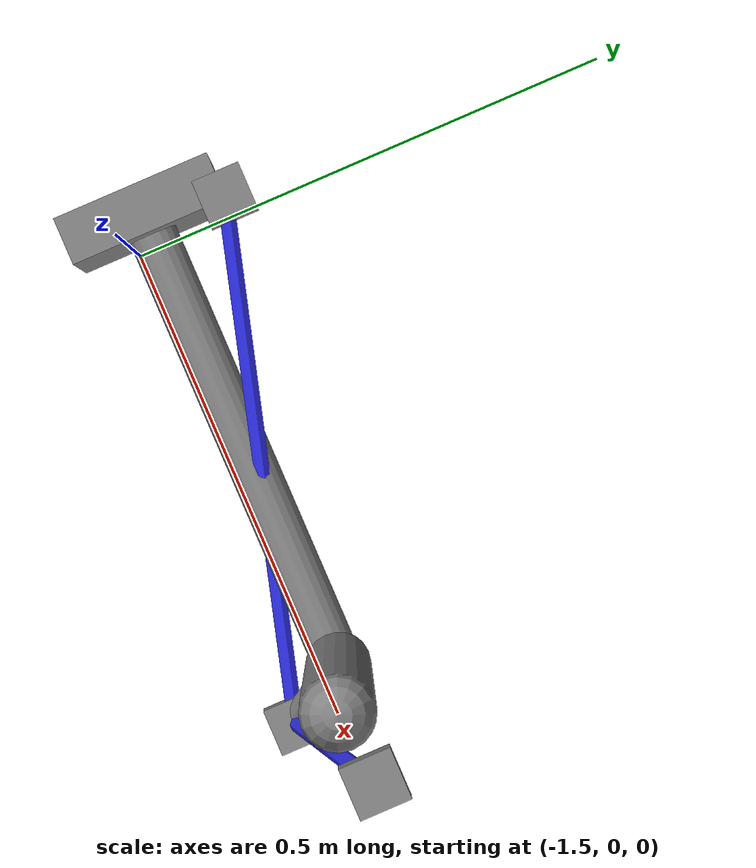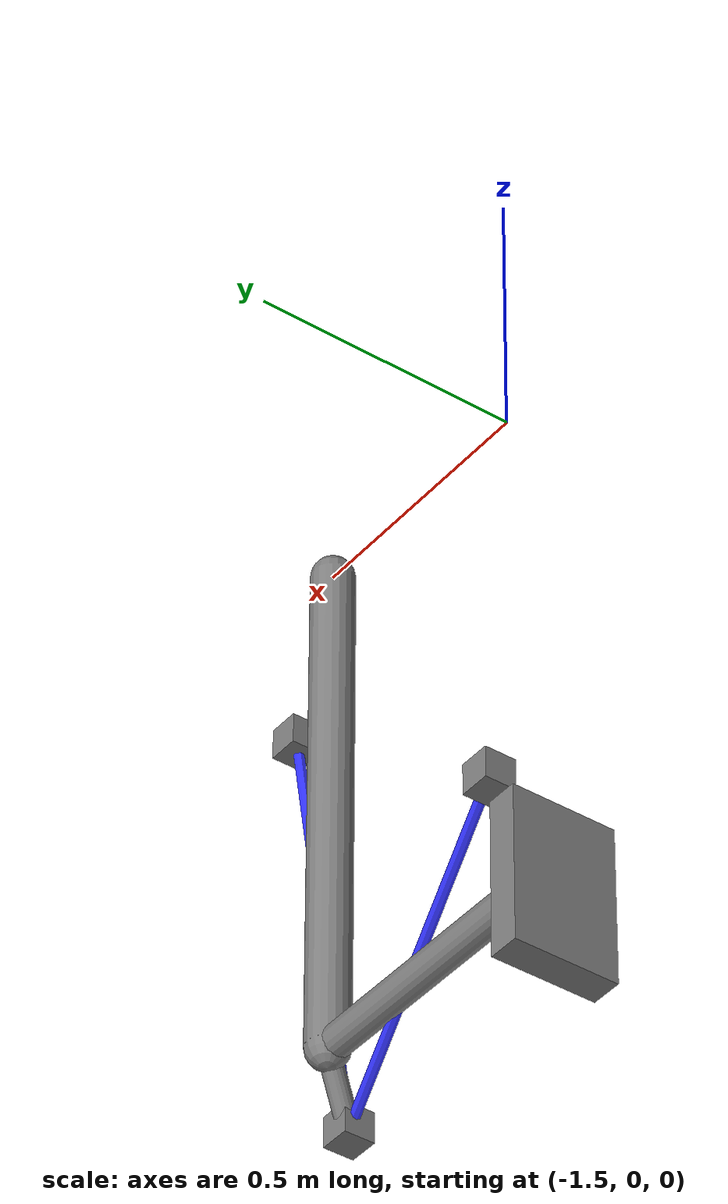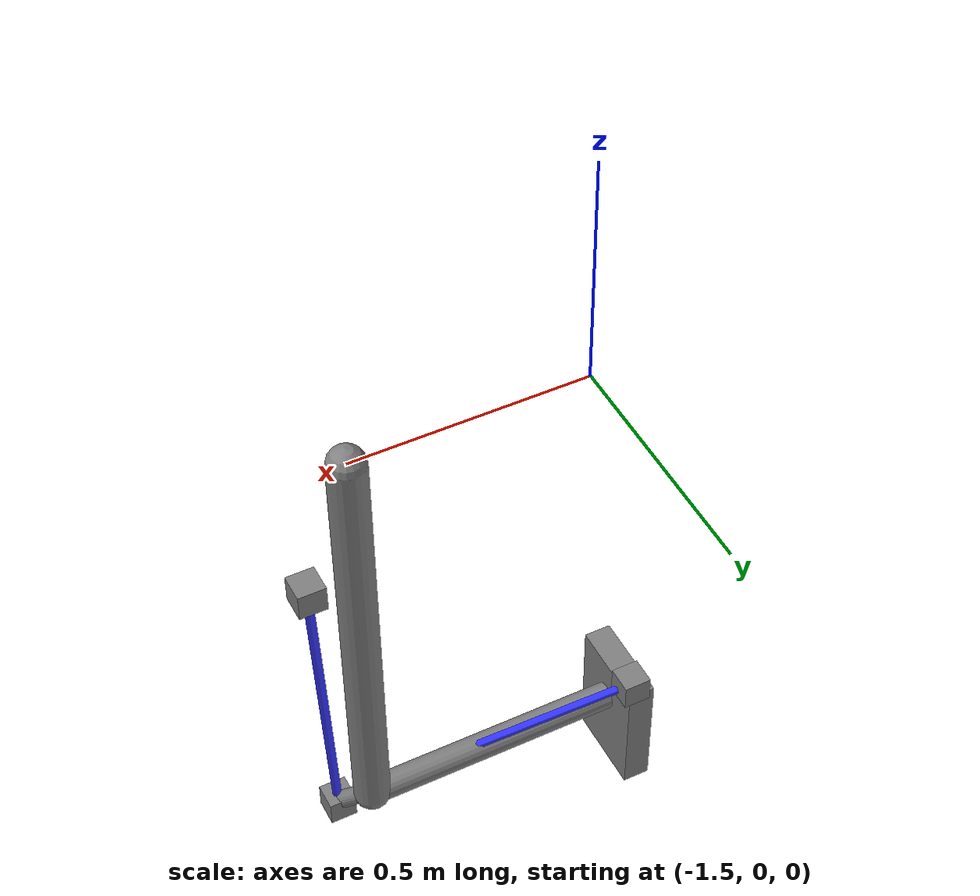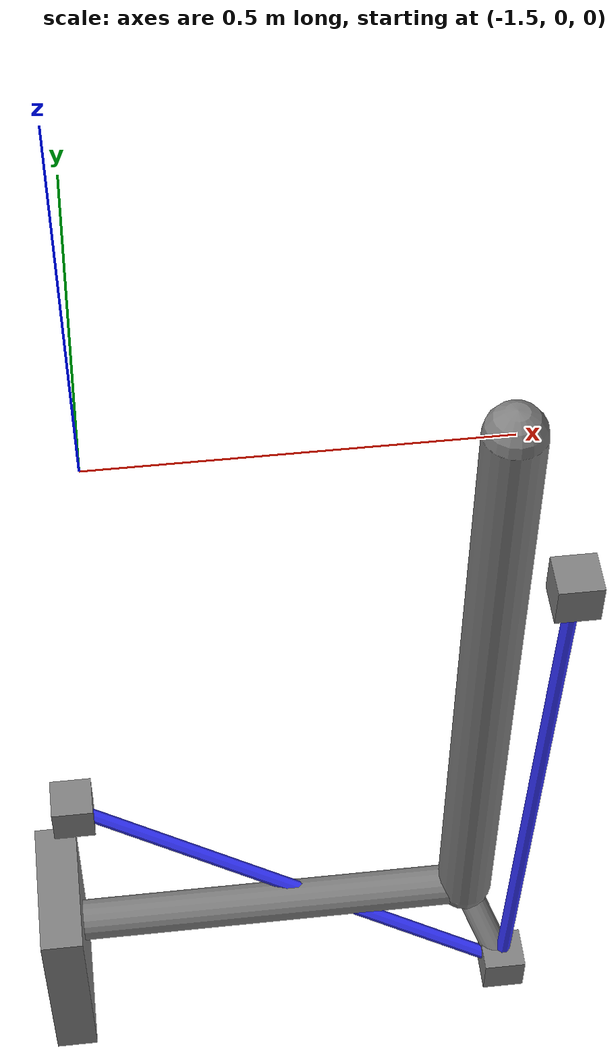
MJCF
<mujoco>
  <option integrator="RK4">
    <flag contact="disable" gravity="disable" energy="enable"/>
  </option>

  <worldbody>
    <body name="thigh" pos="-1 0 0">
      <site name="0" type="box" size=".03 .03 .03" pos=".1 0 -.3"/>
      <joint axis="1 0 0" stiffness="50"/>
      <joint axis="0 1 0" stiffness="50"/>
      <joint axis="0 0 1" stiffness="50"/>
      <geom type="capsule" size=".04" fromto="0 0 0 0 0 -1"/>
      <geom type="capsule" size=".02" fromto="0 0 -1 .05 -.08 -1.1"/>
      <site name="1" type="box" size=".03 .03 .03" pos=".05 -.08 -1.1"/>
      <body name="calf" pos="0 0 -1">
        <joint axis="0 -1 0" damping="0" stiffness="5" springref="90"/>
        <geom type="capsule" size=".03" fromto="0 0 0 -.6 0 0"/>
        <body name="foot" pos="-.6 0 0">
          <joint type="ball" stiffness="20" armature=".1"/>
          <site name="2" type="box" size=".03 .03 .03" pos=".03 .1 .15"/>
          <geom name="foot" type="box" size=".03 .1 .15" pos="0 0 -.05"/>
        </body>
      </body>
    </body>
  </worldbody>

  <tendon>
    <spatial name="ten" width=".01" rgba=".2 .2 1 1">
      <site site="0"/>
      <site site="1"/>
      <site site="2"/>
    </spatial>
  </tendon>
</mujoco>
